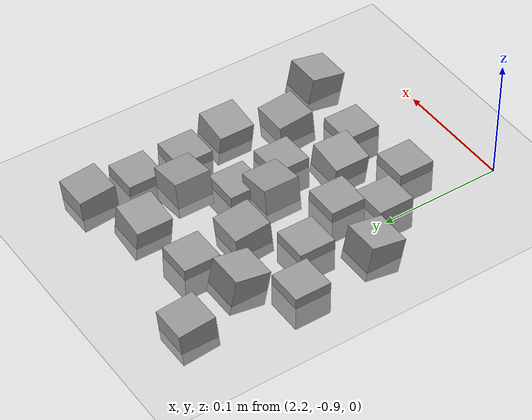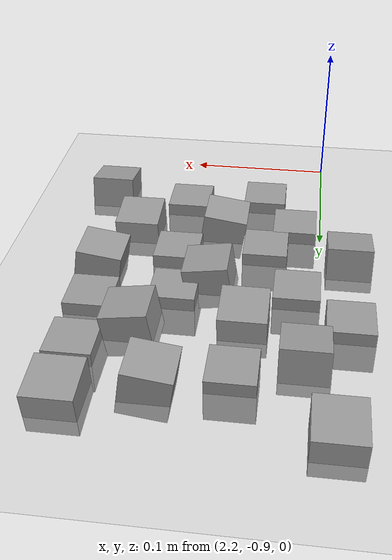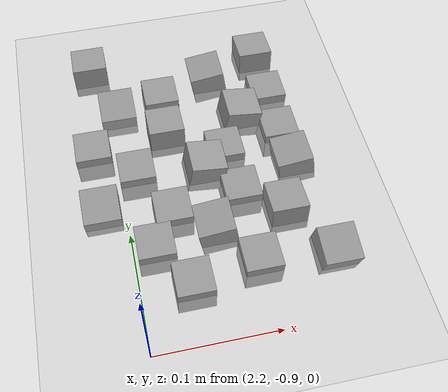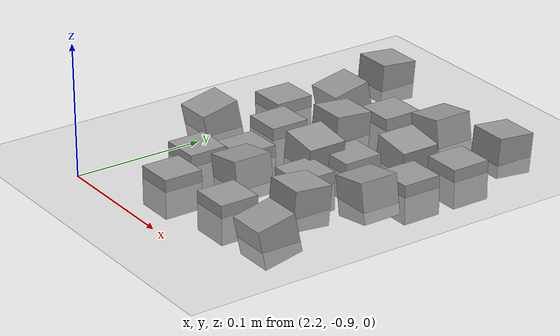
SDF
<sdf version="1.7">
 <world name="default">
  <model name="ground_plane">
   <static>1</static>
   <link name="link">
    <collision name="collision">
     <geometry><plane><normal>0 0 1</normal><size>100 100</size></plane></geometry>
     <surface><friction><ode><mu>100</mu><mu2>50</mu2></ode></friction></surface>
    </collision>
    <visual name="visual">
     <cast_shadows>0</cast_shadows>
     <geometry><plane><normal>0 0 1</normal><size>100 100</size></plane></geometry>
     <material>
      <script><uri>file://media/materials/scripts/gazebo.material</uri><name>Gazebo/Grey</name></script>
     </material>
    </visual>
   </link>
  </model>
  <model name="stone_road_6">
   <link name="link_0">
    <inertial>
     <mass>1</mass>
     <inertia>
      <ixx>0.166667</ixx>
      <ixy>0</ixy>
      <ixz>0</ixz>
      <iyy>0.166667</iyy>
      <iyz>0</iyz>
      <izz>0.166667</izz>
     </inertia>
    </inertial>
    <pose>-0.171827 0.03973 0.003778 0.2 -0 0</pose>
    <kinematic>1</kinematic>
    <visual name="visual">
     <geometry><box><size>0.03 0.03 0.03</size></box></geometry>
     <material>
      <lighting>1</lighting>
      <script><uri>file://media/materials/scripts/gazebo.material</uri><name>Gazebo/Grey</name></script>
      <shader type="pixel"><normal_map>__default__</normal_map></shader>
      <ambient>0.3 0.3 0.3 1</ambient>
      <diffuse>0.7 0.7 0.7 1</diffuse>
      <specular>0.01 0.01 0.01 1</specular>
      <emissive>0 0 0 1</emissive>
     </material>
    </visual>
    <collision name="collision">
     <geometry><box><size>0.03 0.03 0.03</size></box></geometry>
     <surface>
      <friction>
       <ode><mu>1</mu><mu2>1</mu2><fdir1>0 0 0</fdir1><slip1>0</slip1><slip2>0</slip2></ode>
       <torsional>
        <coefficient>1</coefficient>
        <patch_radius>0</patch_radius>
        <surface_radius>0</surface_radius>
        <use_patch_radius>1</use_patch_radius>
        <ode><slip>0</slip></ode>
       </torsional>
      </friction>
      <bounce><restitution_coefficient>0</restitution_coefficient><threshold>1e+06</threshold></bounce>
      <contact>
       <collide_without_contact>0</collide_without_contact>
       <collide_without_contact_bitmask>1</collide_without_contact_bitmask>
       <collide_bitmask>1</collide_bitmask>
       <ode>
        <soft_cfm>0</soft_cfm>
        <soft_erp>0.2</soft_erp>
        <kp>1e+13</kp>
        <kd>1</kd>
        <max_vel>0.01</max_vel>
        <min_depth>0</min_depth>
       </ode>
       <bullet>
        <split_impulse>1</split_impulse>
        <split_impulse_penetration_threshold>-0.01</split_impulse_penetration_threshold>
        <soft_cfm>0</soft_cfm>
        <soft_erp>0.2</soft_erp>
        <kp>1e+13</kp>
        <kd>1</kd>
       </bullet>
      </contact>
     </surface>
    </collision>
   </link>
   <link name="link_0_clone_1">
    <inertial>
     <mass>1</mass>
     <inertia>
      <ixx>0.166667</ixx>
      <ixy>0</ixy>
      <ixz>0</ixz>
      <iyy>0.166667</iyy>
      <iyz>0</iyz>
      <izz>0.166667</izz>
     </inertia>
    </inertial>
    <pose>-0.022921 -0.129606 0.003778 0.2 -0 0</pose>
    <kinematic>1</kinematic>
    <visual name="visual">
     <geometry><box><size>0.03 0.03 0.03</size></box></geometry>
     <material>
      <lighting>1</lighting>
      <script><uri>file://media/materials/scripts/gazebo.material</uri><name>Gazebo/Grey</name></script>
      <shader type="pixel"><normal_map>__default__</normal_map></shader>
      <ambient>0.3 0.3 0.3 1</ambient>
      <diffuse>0.7 0.7 0.7 1</diffuse>
      <specular>0.01 0.01 0.01 1</specular>
      <emissive>0 0 0 1</emissive>
     </material>
    </visual>
    <collision name="collision">
     <geometry><box><size>0.03 0.03 0.03</size></box></geometry>
     <surface>
      <friction>
       <ode><mu>1</mu><mu2>1</mu2><fdir1>0 0 0</fdir1><slip1>0</slip1><slip2>0</slip2></ode>
       <torsional>
        <coefficient>1</coefficient>
        <patch_radius>0</patch_radius>
        <surface_radius>0</surface_radius>
        <use_patch_radius>1</use_patch_radius>
        <ode><slip>0</slip></ode>
       </torsional>
      </friction>
      <bounce><restitution_coefficient>0</restitution_coefficient><threshold>1e+06</threshold></bounce>
      <contact>
       <collide_without_contact>0</collide_without_contact>
       <collide_without_contact_bitmask>1</collide_without_contact_bitmask>
       <collide_bitmask>1</collide_bitmask>
       <ode>
        <soft_cfm>0</soft_cfm>
        <soft_erp>0.2</soft_erp>
        <kp>1e+13</kp>
        <kd>1</kd>
        <max_vel>0.01</max_vel>
        <min_depth>0</min_depth>
       </ode>
       <bullet>
        <split_impulse>1</split_impulse>
        <split_impulse_penetration_threshold>-0.01</split_impulse_penetration_threshold>
        <soft_cfm>0</soft_cfm>
        <soft_erp>0.2</soft_erp>
        <kp>1e+13</kp>
        <kd>1</kd>
       </bullet>
      </contact>
     </surface>
    </collision>
   </link>
   <link name="link_0_clone_2">
    <inertial>
     <mass>1</mass>
     <inertia>
      <ixx>0.166667</ixx>
      <ixy>0</ixy>
      <ixz>0</ixz>
      <iyy>0.166667</iyy>
      <iyz>0</iyz>
      <izz>0.166667</izz>
     </inertia>
    </inertial>
    <pose>-0.065685 0.018139 0.003778 0 0.15 0</pose>
    <kinematic>1</kinematic>
    <visual name="visual">
     <geometry><box><size>0.03 0.03 0.03</size></box></geometry>
     <material>
      <lighting>1</lighting>
      <script><uri>file://media/materials/scripts/gazebo.material</uri><name>Gazebo/Grey</name></script>
      <shader type="pixel"><normal_map>__default__</normal_map></shader>
      <ambient>0.3 0.3 0.3 1</ambient>
      <diffuse>0.7 0.7 0.7 1</diffuse>
      <specular>0.01 0.01 0.01 1</specular>
      <emissive>0 0 0 1</emissive>
     </material>
    </visual>
    <collision name="collision">
     <geometry><box><size>0.03 0.03 0.03</size></box></geometry>
     <surface>
      <friction>
       <ode><mu>1</mu><mu2>1</mu2><fdir1>0 0 0</fdir1><slip1>0</slip1><slip2>0</slip2></ode>
       <torsional>
        <coefficient>1</coefficient>
        <patch_radius>0</patch_radius>
        <surface_radius>0</surface_radius>
        <use_patch_radius>1</use_patch_radius>
        <ode><slip>0</slip></ode>
       </torsional>
      </friction>
      <bounce><restitution_coefficient>0</restitution_coefficient><threshold>1e+06</threshold></bounce>
      <contact>
       <collide_without_contact>0</collide_without_contact>
       <collide_without_contact_bitmask>1</collide_without_contact_bitmask>
       <collide_bitmask>1</collide_bitmask>
       <ode>
        <soft_cfm>0</soft_cfm>
        <soft_erp>0.2</soft_erp>
        <kp>1e+13</kp>
        <kd>1</kd>
        <max_vel>0.01</max_vel>
        <min_depth>0</min_depth>
       </ode>
       <bullet>
        <split_impulse>1</split_impulse>
        <split_impulse_penetration_threshold>-0.01</split_impulse_penetration_threshold>
        <soft_cfm>0</soft_cfm>
        <soft_erp>0.2</soft_erp>
        <kp>1e+13</kp>
        <kd>1</kd>
       </bullet>
      </contact>
     </surface>
    </collision>
   </link>
   <link name="link_0_clone_2_clone">
    <inertial>
     <mass>1</mass>
     <inertia>
      <ixx>0.166667</ixx>
      <ixy>0</ixy>
      <ixz>0</ixz>
      <iyy>0.166667</iyy>
      <iyz>0</iyz>
      <izz>0.166667</izz>
     </inertia>
    </inertial>
    <pose>-0.10771 -0.03187 0.003778 0 0.15 0</pose>
    <kinematic>1</kinematic>
    <visual name="visual">
     <geometry><box><size>0.03 0.03 0.03</size></box></geometry>
     <material>
      <lighting>1</lighting>
      <script><uri>file://media/materials/scripts/gazebo.material</uri><name>Gazebo/Grey</name></script>
      <shader type="pixel"><normal_map>__default__</normal_map></shader>
      <ambient>0.3 0.3 0.3 1</ambient>
      <diffuse>0.7 0.7 0.7 1</diffuse>
      <specular>0.01 0.01 0.01 1</specular>
      <emissive>0 0 0 1</emissive>
     </material>
    </visual>
    <collision name="collision">
     <geometry><box><size>0.03 0.03 0.03</size></box></geometry>
     <surface>
      <friction>
       <ode><mu>1</mu><mu2>1</mu2><fdir1>0 0 0</fdir1><slip1>0</slip1><slip2>0</slip2></ode>
       <torsional>
        <coefficient>1</coefficient>
        <patch_radius>0</patch_radius>
        <surface_radius>0</surface_radius>
        <use_patch_radius>1</use_patch_radius>
        <ode><slip>0</slip></ode>
       </torsional>
      </friction>
      <bounce><restitution_coefficient>0</restitution_coefficient><threshold>1e+06</threshold></bounce>
      <contact>
       <collide_without_contact>0</collide_without_contact>
       <collide_without_contact_bitmask>1</collide_without_contact_bitmask>
       <collide_bitmask>1</collide_bitmask>
       <ode>
        <soft_cfm>0</soft_cfm>
        <soft_erp>0.2</soft_erp>
        <kp>1e+13</kp>
        <kd>1</kd>
        <max_vel>0.01</max_vel>
        <min_depth>0</min_depth>
       </ode>
       <bullet>
        <split_impulse>1</split_impulse>
        <split_impulse_penetration_threshold>-0.01</split_impulse_penetration_threshold>
        <soft_cfm>0</soft_cfm>
        <soft_erp>0.2</soft_erp>
        <kp>1e+13</kp>
        <kd>1</kd>
       </bullet>
      </contact>
     </surface>
    </collision>
   </link>
   <link name="link_0_clone_2_clone_2_clone_0">
    <inertial>
     <mass>1</mass>
     <inertia>
      <ixx>0.166667</ixx>
      <ixy>0</ixy>
      <ixz>0</ixz>
      <iyy>0.166667</iyy>
      <iyz>0</iyz>
      <izz>0.166667</izz>
     </inertia>
    </inertial>
    <pose>-0.032874 -0.039714 0.003778 0 -0.15 0</pose>
    <kinematic>1</kinematic>
    <visual name="visual">
     <geometry><box><size>0.03 0.03 0.03</size></box></geometry>
     <material>
      <lighting>1</lighting>
      <script><uri>file://media/materials/scripts/gazebo.material</uri><name>Gazebo/Grey</name></script>
      <shader type="pixel"><normal_map>__default__</normal_map></shader>
      <ambient>0.3 0.3 0.3 1</ambient>
      <diffuse>0.7 0.7 0.7 1</diffuse>
      <specular>0.01 0.01 0.01 1</specular>
      <emissive>0 0 0 1</emissive>
     </material>
    </visual>
    <collision name="collision">
     <geometry><box><size>0.03 0.03 0.03</size></box></geometry>
     <surface>
      <friction>
       <ode><mu>1</mu><mu2>1</mu2><fdir1>0 0 0</fdir1><slip1>0</slip1><slip2>0</slip2></ode>
       <torsional>
        <coefficient>1</coefficient>
        <patch_radius>0</patch_radius>
        <surface_radius>0</surface_radius>
        <use_patch_radius>1</use_patch_radius>
        <ode><slip>0</slip></ode>
       </torsional>
      </friction>
      <bounce><restitution_coefficient>0</restitution_coefficient><threshold>1e+06</threshold></bounce>
      <contact>
       <collide_without_contact>0</collide_without_contact>
       <collide_without_contact_bitmask>1</collide_without_contact_bitmask>
       <collide_bitmask>1</collide_bitmask>
       <ode>
        <soft_cfm>0</soft_cfm>
        <soft_erp>0.2</soft_erp>
        <kp>1e+13</kp>
        <kd>1</kd>
        <max_vel>0.01</max_vel>
        <min_depth>0</min_depth>
       </ode>
       <bullet>
        <split_impulse>1</split_impulse>
        <split_impulse_penetration_threshold>-0.01</split_impulse_penetration_threshold>
        <soft_cfm>0</soft_cfm>
        <soft_erp>0.2</soft_erp>
        <kp>1e+13</kp>
        <kd>1</kd>
       </bullet>
      </contact>
     </surface>
    </collision>
   </link>
   <link name="link_0_clone_2_clone_2_clone_1">
    <inertial>
     <mass>1</mass>
     <inertia>
      <ixx>0.166667</ixx>
      <ixy>0</ixy>
      <ixz>0</ixz>
      <iyy>0.166667</iyy>
      <iyz>0</iyz>
      <izz>0.166667</izz>
     </inertia>
    </inertial>
    <pose>-0.085624 0.065625 0.003778 0 -0.15 0</pose>
    <kinematic>1</kinematic>
    <visual name="visual">
     <geometry><box><size>0.03 0.03 0.03</size></box></geometry>
     <material>
      <lighting>1</lighting>
      <script><uri>file://media/materials/scripts/gazebo.material</uri><name>Gazebo/Grey</name></script>
      <shader type="pixel"><normal_map>__default__</normal_map></shader>
      <ambient>0.3 0.3 0.3 1</ambient>
      <diffuse>0.7 0.7 0.7 1</diffuse>
      <specular>0.01 0.01 0.01 1</specular>
      <emissive>0 0 0 1</emissive>
     </material>
    </visual>
    <collision name="collision">
     <geometry><box><size>0.03 0.03 0.03</size></box></geometry>
     <surface>
      <friction>
       <ode><mu>1</mu><mu2>1</mu2><fdir1>0 0 0</fdir1><slip1>0</slip1><slip2>0</slip2></ode>
       <torsional>
        <coefficient>1</coefficient>
        <patch_radius>0</patch_radius>
        <surface_radius>0</surface_radius>
        <use_patch_radius>1</use_patch_radius>
        <ode><slip>0</slip></ode>
       </torsional>
      </friction>
      <bounce><restitution_coefficient>0</restitution_coefficient><threshold>1e+06</threshold></bounce>
      <contact>
       <collide_without_contact>0</collide_without_contact>
       <collide_without_contact_bitmask>1</collide_without_contact_bitmask>
       <collide_bitmask>1</collide_bitmask>
       <ode>
        <soft_cfm>0</soft_cfm>
        <soft_erp>0.2</soft_erp>
        <kp>1e+13</kp>
        <kd>1</kd>
        <max_vel>0.01</max_vel>
        <min_depth>0</min_depth>
       </ode>
       <bullet>
        <split_impulse>1</split_impulse>
        <split_impulse_penetration_threshold>-0.01</split_impulse_penetration_threshold>
        <soft_cfm>0</soft_cfm>
        <soft_erp>0.2</soft_erp>
        <kp>1e+13</kp>
        <kd>1</kd>
       </bullet>
      </contact>
     </surface>
    </collision>
   </link>
   <link name="link_0_clone_2_clone_2_clone_13_clone_clone_14">
    <inertial>
     <mass>1</mass>
     <inertia>
      <ixx>0.166667</ixx>
      <ixy>0</ixy>
      <ixz>0</ixz>
      <iyy>0.166667</iyy>
      <iyz>0</iyz>
      <izz>0.166667</izz>
     </inertia>
    </inertial>
    <pose>-0.190578 0.093923 0.003778 -0.1 0 0</pose>
    <kinematic>1</kinematic>
    <visual name="visual">
     <geometry><box><size>0.03 0.03 0.03</size></box></geometry>
     <material>
      <lighting>1</lighting>
      <script><uri>file://media/materials/scripts/gazebo.material</uri><name>Gazebo/Grey</name></script>
      <shader type="pixel"><normal_map>__default__</normal_map></shader>
      <ambient>0.3 0.3 0.3 1</ambient>
      <diffuse>0.7 0.7 0.7 1</diffuse>
      <specular>0.01 0.01 0.01 1</specular>
      <emissive>0 0 0 1</emissive>
     </material>
    </visual>
    <collision name="collision">
     <geometry><box><size>0.03 0.03 0.03</size></box></geometry>
     <surface>
      <friction>
       <ode><mu>1</mu><mu2>1</mu2><fdir1>0 0 0</fdir1><slip1>0</slip1><slip2>0</slip2></ode>
       <torsional>
        <coefficient>1</coefficient>
        <patch_radius>0</patch_radius>
        <surface_radius>0</surface_radius>
        <use_patch_radius>1</use_patch_radius>
        <ode><slip>0</slip></ode>
       </torsional>
      </friction>
      <bounce><restitution_coefficient>0</restitution_coefficient><threshold>1e+06</threshold></bounce>
      <contact>
       <collide_without_contact>0</collide_without_contact>
       <collide_without_contact_bitmask>1</collide_without_contact_bitmask>
       <collide_bitmask>1</collide_bitmask>
       <ode>
        <soft_cfm>0</soft_cfm>
        <soft_erp>0.2</soft_erp>
        <kp>1e+13</kp>
        <kd>1</kd>
        <max_vel>0.01</max_vel>
        <min_depth>0</min_depth>
       </ode>
       <bullet>
        <split_impulse>1</split_impulse>
        <split_impulse_penetration_threshold>-0.01</split_impulse_penetration_threshold>
        <soft_cfm>0</soft_cfm>
        <soft_erp>0.2</soft_erp>
        <kp>1e+13</kp>
        <kd>1</kd>
       </bullet>
      </contact>
     </surface>
    </collision>
   </link>
   <link name="link_0_clone_2_clone_2_clone_13_clone_clone_16_clone_10">
    <inertial>
     <mass>1</mass>
     <inertia>
      <ixx>0.166667</ixx>
      <ixy>0</ixy>
      <ixz>0</ixz>
      <iyy>0.166667</iyy>
      <iyz>0</iyz>
      <izz>0.166667</izz>
     </inertia>
    </inertial>
    <pose>-0.082186 -0.05781 -0.006222 0 -0 0</pose>
    <kinematic>1</kinematic>
    <visual name="visual">
     <geometry><box><size>0.03 0.03 0.03</size></box></geometry>
     <material>
      <lighting>1</lighting>
      <script><uri>file://media/materials/scripts/gazebo.material</uri><name>Gazebo/Grey</name></script>
      <shader type="pixel"><normal_map>__default__</normal_map></shader>
      <ambient>0.3 0.3 0.3 1</ambient>
      <diffuse>0.7 0.7 0.7 1</diffuse>
      <specular>0.01 0.01 0.01 1</specular>
      <emissive>0 0 0 1</emissive>
     </material>
    </visual>
    <collision name="collision">
     <geometry><box><size>0.03 0.03 0.03</size></box></geometry>
     <surface>
      <friction>
       <ode><mu>1</mu><mu2>1</mu2><fdir1>0 0 0</fdir1><slip1>0</slip1><slip2>0</slip2></ode>
       <torsional>
        <coefficient>1</coefficient>
        <patch_radius>0</patch_radius>
        <surface_radius>0</surface_radius>
        <use_patch_radius>1</use_patch_radius>
        <ode><slip>0</slip></ode>
       </torsional>
      </friction>
      <bounce><restitution_coefficient>0</restitution_coefficient><threshold>1e+06</threshold></bounce>
      <contact>
       <collide_without_contact>0</collide_without_contact>
       <collide_without_contact_bitmask>1</collide_without_contact_bitmask>
       <collide_bitmask>1</collide_bitmask>
       <ode>
        <soft_cfm>0</soft_cfm>
        <soft_erp>0.2</soft_erp>
        <kp>1e+13</kp>
        <kd>1</kd>
        <max_vel>0.01</max_vel>
        <min_depth>0</min_depth>
       </ode>
       <bullet>
        <split_impulse>1</split_impulse>
        <split_impulse_penetration_threshold>-0.01</split_impulse_penetration_threshold>
        <soft_cfm>0</soft_cfm>
        <soft_erp>0.2</soft_erp>
        <kp>1e+13</kp>
        <kd>1</kd>
       </bullet>
      </contact>
     </surface>
    </collision>
   </link>
   <link name="link_0_clone_2_clone_2_clone_13_clone_clone_16_clone_11">
    <inertial>
     <mass>1</mass>
     <inertia>
      <ixx>0.166667</ixx>
      <ixy>0</ixy>
      <ixz>0</ixz>
      <iyy>0.166667</iyy>
      <iyz>0</iyz>
      <izz>0.166667</izz>
     </inertia>
    </inertial>
    <pose>-0.141844 -0.066911 -0.006222 0 -0 0</pose>
    <kinematic>1</kinematic>
    <visual name="visual">
     <geometry><box><size>0.03 0.03 0.03</size></box></geometry>
     <material>
      <lighting>1</lighting>
      <script><uri>file://media/materials/scripts/gazebo.material</uri><name>Gazebo/Grey</name></script>
      <shader type="pixel"><normal_map>__default__</normal_map></shader>
      <ambient>0.3 0.3 0.3 1</ambient>
      <diffuse>0.7 0.7 0.7 1</diffuse>
      <specular>0.01 0.01 0.01 1</specular>
      <emissive>0 0 0 1</emissive>
     </material>
    </visual>
    <collision name="collision">
     <geometry><box><size>0.03 0.03 0.03</size></box></geometry>
     <surface>
      <friction>
       <ode><mu>1</mu><mu2>1</mu2><fdir1>0 0 0</fdir1><slip1>0</slip1><slip2>0</slip2></ode>
       <torsional>
        <coefficient>1</coefficient>
        <patch_radius>0</patch_radius>
        <surface_radius>0</surface_radius>
        <use_patch_radius>1</use_patch_radius>
        <ode><slip>0</slip></ode>
       </torsional>
      </friction>
      <bounce><restitution_coefficient>0</restitution_coefficient><threshold>1e+06</threshold></bounce>
      <contact>
       <collide_without_contact>0</collide_without_contact>
       <collide_without_contact_bitmask>1</collide_without_contact_bitmask>
       <collide_bitmask>1</collide_bitmask>
       <ode>
        <soft_cfm>0</soft_cfm>
        <soft_erp>0.2</soft_erp>
        <kp>1e+13</kp>
        <kd>1</kd>
        <max_vel>0.01</max_vel>
        <min_depth>0</min_depth>
       </ode>
       <bullet>
        <split_impulse>1</split_impulse>
        <split_impulse_penetration_threshold>-0.01</split_impulse_penetration_threshold>
        <soft_cfm>0</soft_cfm>
        <soft_erp>0.2</soft_erp>
        <kp>1e+13</kp>
        <kd>1</kd>
       </bullet>
      </contact>
     </surface>
    </collision>
   </link>
   <link name="link_0_clone_2_clone_2_clone_13_clone_clone_16_clone_12">
    <inertial>
     <mass>1</mass>
     <inertia>
      <ixx>0.166667</ixx>
      <ixy>0</ixy>
      <ixz>0</ixz>
      <iyy>0.166667</iyy>
      <iyz>0</iyz>
      <izz>0.166667</izz>
     </inertia>
    </inertial>
    <pose>-0.164908 -0.022947 -0.006222 0 -0 0</pose>
    <kinematic>1</kinematic>
    <visual name="visual">
     <geometry><box><size>0.03 0.03 0.03</size></box></geometry>
     <material>
      <lighting>1</lighting>
      <script><uri>file://media/materials/scripts/gazebo.material</uri><name>Gazebo/Grey</name></script>
      <shader type="pixel"><normal_map>__default__</normal_map></shader>
      <ambient>0.3 0.3 0.3 1</ambient>
      <diffuse>0.7 0.7 0.7 1</diffuse>
      <specular>0.01 0.01 0.01 1</specular>
      <emissive>0 0 0 1</emissive>
     </material>
    </visual>
    <collision name="collision">
     <geometry><box><size>0.03 0.03 0.03</size></box></geometry>
     <surface>
      <friction>
       <ode><mu>1</mu><mu2>1</mu2><fdir1>0 0 0</fdir1><slip1>0</slip1><slip2>0</slip2></ode>
       <torsional>
        <coefficient>1</coefficient>
        <patch_radius>0</patch_radius>
        <surface_radius>0</surface_radius>
        <use_patch_radius>1</use_patch_radius>
        <ode><slip>0</slip></ode>
       </torsional>
      </friction>
      <bounce><restitution_coefficient>0</restitution_coefficient><threshold>1e+06</threshold></bounce>
      <contact>
       <collide_without_contact>0</collide_without_contact>
       <collide_without_contact_bitmask>1</collide_without_contact_bitmask>
       <collide_bitmask>1</collide_bitmask>
       <ode>
        <soft_cfm>0</soft_cfm>
        <soft_erp>0.2</soft_erp>
        <kp>1e+13</kp>
        <kd>1</kd>
        <max_vel>0.01</max_vel>
        <min_depth>0</min_depth>
       </ode>
       <bullet>
        <split_impulse>1</split_impulse>
        <split_impulse_penetration_threshold>-0.01</split_impulse_penetration_threshold>
        <soft_cfm>0</soft_cfm>
        <soft_erp>0.2</soft_erp>
        <kp>1e+13</kp>
        <kd>1</kd>
       </bullet>
      </contact>
     </surface>
    </collision>
   </link>
   <link name="link_0_clone_2_clone_2_clone_13_clone_clone_16_clone_2">
    <inertial>
     <mass>1</mass>
     <inertia>
      <ixx>0.166667</ixx>
      <ixy>0</ixy>
      <ixz>0</ixz>
      <iyy>0.166667</iyy>
      <iyz>0</iyz>
      <izz>0.166667</izz>
     </inertia>
    </inertial>
    <pose>-0.035128 0.040728 -0.006222 0 -0 0</pose>
    <kinematic>1</kinematic>
    <visual name="visual">
     <geometry><box><size>0.03 0.03 0.03</size></box></geometry>
     <material>
      <lighting>1</lighting>
      <script><uri>file://media/materials/scripts/gazebo.material</uri><name>Gazebo/Grey</name></script>
      <shader type="pixel"><normal_map>__default__</normal_map></shader>
      <ambient>0.3 0.3 0.3 1</ambient>
      <diffuse>0.7 0.7 0.7 1</diffuse>
      <specular>0.01 0.01 0.01 1</specular>
      <emissive>0 0 0 1</emissive>
     </material>
    </visual>
    <collision name="collision">
     <geometry><box><size>0.03 0.03 0.03</size></box></geometry>
     <surface>
      <friction>
       <ode><mu>1</mu><mu2>1</mu2><fdir1>0 0 0</fdir1><slip1>0</slip1><slip2>0</slip2></ode>
       <torsional>
        <coefficient>1</coefficient>
        <patch_radius>0</patch_radius>
        <surface_radius>0</surface_radius>
        <use_patch_radius>1</use_patch_radius>
        <ode><slip>0</slip></ode>
       </torsional>
      </friction>
      <bounce><restitution_coefficient>0</restitution_coefficient><threshold>1e+06</threshold></bounce>
      <contact>
       <collide_without_contact>0</collide_without_contact>
       <collide_without_contact_bitmask>1</collide_without_contact_bitmask>
       <collide_bitmask>1</collide_bitmask>
       <ode>
        <soft_cfm>0</soft_cfm>
        <soft_erp>0.2</soft_erp>
        <kp>1e+13</kp>
        <kd>1</kd>
        <max_vel>0.01</max_vel>
        <min_depth>0</min_depth>
       </ode>
       <bullet>
        <split_impulse>1</split_impulse>
        <split_impulse_penetration_threshold>-0.01</split_impulse_penetration_threshold>
        <soft_cfm>0</soft_cfm>
        <soft_erp>0.2</soft_erp>
        <kp>1e+13</kp>
        <kd>1</kd>
       </bullet>
      </contact>
     </surface>
    </collision>
   </link>
   <link name="link_0_clone_2_clone_2_clone_13_clone_clone_16_clone_26">
    <inertial>
     <mass>1</mass>
     <inertia>
      <ixx>0.166667</ixx>
      <ixy>0</ixy>
      <ixz>0</ixz>
      <iyy>0.166667</iyy>
      <iyz>0</iyz>
      <izz>0.166667</izz>
     </inertia>
    </inertial>
    <pose>-0.035162 -0.002247 -0.006222 0 -0 0</pose>
    <kinematic>1</kinematic>
    <visual name="visual">
     <geometry><box><size>0.03 0.03 0.03</size></box></geometry>
     <material>
      <lighting>1</lighting>
      <script><uri>file://media/materials/scripts/gazebo.material</uri><name>Gazebo/Grey</name></script>
      <shader type="pixel"><normal_map>__default__</normal_map></shader>
      <ambient>0.3 0.3 0.3 1</ambient>
      <diffuse>0.7 0.7 0.7 1</diffuse>
      <specular>0.01 0.01 0.01 1</specular>
      <emissive>0 0 0 1</emissive>
     </material>
    </visual>
    <collision name="collision">
     <geometry><box><size>0.03 0.03 0.03</size></box></geometry>
     <surface>
      <friction>
       <ode><mu>1</mu><mu2>1</mu2><fdir1>0 0 0</fdir1><slip1>0</slip1><slip2>0</slip2></ode>
       <torsional>
        <coefficient>1</coefficient>
        <patch_radius>0</patch_radius>
        <surface_radius>0</surface_radius>
        <use_patch_radius>1</use_patch_radius>
        <ode><slip>0</slip></ode>
       </torsional>
      </friction>
      <bounce><restitution_coefficient>0</restitution_coefficient><threshold>1e+06</threshold></bounce>
      <contact>
       <collide_without_contact>0</collide_without_contact>
       <collide_without_contact_bitmask>1</collide_without_contact_bitmask>
       <collide_bitmask>1</collide_bitmask>
       <ode>
        <soft_cfm>0</soft_cfm>
        <soft_erp>0.2</soft_erp>
        <kp>1e+13</kp>
        <kd>1</kd>
        <max_vel>0.01</max_vel>
        <min_depth>0</min_depth>
       </ode>
       <bullet>
        <split_impulse>1</split_impulse>
        <split_impulse_penetration_threshold>-0.01</split_impulse_penetration_threshold>
        <soft_cfm>0</soft_cfm>
        <soft_erp>0.2</soft_erp>
        <kp>1e+13</kp>
        <kd>1</kd>
       </bullet>
      </contact>
     </surface>
    </collision>
   </link>
   <link name="link_0_clone_2_clone_2_clone_13_clone_clone_16_clone_27">
    <inertial>
     <mass>1</mass>
     <inertia>
      <ixx>0.166667</ixx>
      <ixy>0</ixy>
      <ixz>0</ixz>
      <iyy>0.166667</iyy>
      <iyz>0</iyz>
      <izz>0.166667</izz>
     </inertia>
    </inertial>
    <pose>-0.137316 -0.132225 -0.006222 0 -0 0</pose>
    <kinematic>1</kinematic>
    <visual name="visual">
     <geometry><box><size>0.03 0.03 0.03</size></box></geometry>
     <material>
      <lighting>1</lighting>
      <script><uri>file://media/materials/scripts/gazebo.material</uri><name>Gazebo/Grey</name></script>
      <shader type="pixel"><normal_map>__default__</normal_map></shader>
      <ambient>0.3 0.3 0.3 1</ambient>
      <diffuse>0.7 0.7 0.7 1</diffuse>
      <specular>0.01 0.01 0.01 1</specular>
      <emissive>0 0 0 1</emissive>
     </material>
    </visual>
    <collision name="collision">
     <geometry><box><size>0.03 0.03 0.03</size></box></geometry>
     <surface>
      <friction>
       <ode><mu>1</mu><mu2>1</mu2><fdir1>0 0 0</fdir1><slip1>0</slip1><slip2>0</slip2></ode>
       <torsional>
        <coefficient>1</coefficient>
        <patch_radius>0</patch_radius>
        <surface_radius>0</surface_radius>
        <use_patch_radius>1</use_patch_radius>
        <ode><slip>0</slip></ode>
       </torsional>
      </friction>
      <bounce><restitution_coefficient>0</restitution_coefficient><threshold>1e+06</threshold></bounce>
      <contact>
       <collide_without_contact>0</collide_without_contact>
       <collide_without_contact_bitmask>1</collide_without_contact_bitmask>
       <collide_bitmask>1</collide_bitmask>
       <ode>
        <soft_cfm>0</soft_cfm>
        <soft_erp>0.2</soft_erp>
        <kp>1e+13</kp>
        <kd>1</kd>
        <max_vel>0.01</max_vel>
        <min_depth>0</min_depth>
       </ode>
       <bullet>
        <split_impulse>1</split_impulse>
        <split_impulse_penetration_threshold>-0.01</split_impulse_penetration_threshold>
        <soft_cfm>0</soft_cfm>
        <soft_erp>0.2</soft_erp>
        <kp>1e+13</kp>
        <kd>1</kd>
       </bullet>
      </contact>
     </surface>
    </collision>
   </link>
   <link name="link_0_clone_2_clone_2_clone_13_clone_clone_16_clone_30">
    <inertial>
     <mass>1</mass>
     <inertia>
      <ixx>0.166667</ixx>
      <ixy>0</ixy>
      <ixz>0</ixz>
      <iyy>0.166667</iyy>
      <iyz>0</iyz>
      <izz>0.166667</izz>
     </inertia>
    </inertial>
    <pose>-0.160879 -0.095951 -0.006222 0 -0 0</pose>
    <kinematic>1</kinematic>
    <visual name="visual">
     <geometry><box><size>0.03 0.03 0.03</size></box></geometry>
     <material>
      <lighting>1</lighting>
      <script><uri>file://media/materials/scripts/gazebo.material</uri><name>Gazebo/Grey</name></script>
      <shader type="pixel"><normal_map>__default__</normal_map></shader>
      <ambient>0.3 0.3 0.3 1</ambient>
      <diffuse>0.7 0.7 0.7 1</diffuse>
      <specular>0.01 0.01 0.01 1</specular>
      <emissive>0 0 0 1</emissive>
     </material>
    </visual>
    <collision name="collision">
     <geometry><box><size>0.03 0.03 0.03</size></box></geometry>
     <surface>
      <friction>
       <ode><mu>1</mu><mu2>1</mu2><fdir1>0 0 0</fdir1><slip1>0</slip1><slip2>0</slip2></ode>
       <torsional>
        <coefficient>1</coefficient>
        <patch_radius>0</patch_radius>
        <surface_radius>0</surface_radius>
        <use_patch_radius>1</use_patch_radius>
        <ode><slip>0</slip></ode>
       </torsional>
      </friction>
      <bounce><restitution_coefficient>0</restitution_coefficient><threshold>1e+06</threshold></bounce>
      <contact>
       <collide_without_contact>0</collide_without_contact>
       <collide_without_contact_bitmask>1</collide_without_contact_bitmask>
       <collide_bitmask>1</collide_bitmask>
       <ode>
        <soft_cfm>0</soft_cfm>
        <soft_erp>0.2</soft_erp>
        <kp>1e+13</kp>
        <kd>1</kd>
        <max_vel>0.01</max_vel>
        <min_depth>0</min_depth>
       </ode>
       <bullet>
        <split_impulse>1</split_impulse>
        <split_impulse_penetration_threshold>-0.01</split_impulse_penetration_threshold>
        <soft_cfm>0</soft_cfm>
        <soft_erp>0.2</soft_erp>
        <kp>1e+13</kp>
        <kd>1</kd>
       </bullet>
      </contact>
     </surface>
    </collision>
   </link>
   <link name="link_0_clone_2_clone_2_clone_13_clone_clone_16_clone_31">
    <inertial>
     <mass>1</mass>
     <inertia>
      <ixx>0.166667</ixx>
      <ixy>0</ixy>
      <ixz>0</ixz>
      <iyy>0.166667</iyy>
      <iyz>0</iyz>
      <izz>0.166667</izz>
     </inertia>
    </inertial>
    <pose>-0.198811 0.004584 -0.006222 0 -0 0</pose>
    <kinematic>1</kinematic>
    <visual name="visual">
     <geometry><box><size>0.03 0.03 0.03</size></box></geometry>
     <material>
      <lighting>1</lighting>
      <script><uri>file://media/materials/scripts/gazebo.material</uri><name>Gazebo/Grey</name></script>
      <shader type="pixel"><normal_map>__default__</normal_map></shader>
      <ambient>0.3 0.3 0.3 1</ambient>
      <diffuse>0.7 0.7 0.7 1</diffuse>
      <specular>0.01 0.01 0.01 1</specular>
      <emissive>0 0 0 1</emissive>
     </material>
    </visual>
    <collision name="collision">
     <geometry><box><size>0.03 0.03 0.03</size></box></geometry>
     <surface>
      <friction>
       <ode><mu>1</mu><mu2>1</mu2><fdir1>0 0 0</fdir1><slip1>0</slip1><slip2>0</slip2></ode>
       <torsional>
        <coefficient>1</coefficient>
        <patch_radius>0</patch_radius>
        <surface_radius>0</surface_radius>
        <use_patch_radius>1</use_patch_radius>
        <ode><slip>0</slip></ode>
       </torsional>
      </friction>
      <bounce><restitution_coefficient>0</restitution_coefficient><threshold>1e+06</threshold></bounce>
      <contact>
       <collide_without_contact>0</collide_without_contact>
       <collide_without_contact_bitmask>1</collide_without_contact_bitmask>
       <collide_bitmask>1</collide_bitmask>
       <ode>
        <soft_cfm>0</soft_cfm>
        <soft_erp>0.2</soft_erp>
        <kp>1e+13</kp>
        <kd>1</kd>
        <max_vel>0.01</max_vel>
        <min_depth>0</min_depth>
       </ode>
       <bullet>
        <split_impulse>1</split_impulse>
        <split_impulse_penetration_threshold>-0.01</split_impulse_penetration_threshold>
        <soft_cfm>0</soft_cfm>
        <soft_erp>0.2</soft_erp>
        <kp>1e+13</kp>
        <kd>1</kd>
       </bullet>
      </contact>
     </surface>
    </collision>
   </link>
   <link name="link_0_clone_2_clone_2_clone_13_clone_clone_16_clone_4">
    <inertial>
     <mass>1</mass>
     <inertia>
      <ixx>0.166667</ixx>
      <ixy>0</ixy>
      <ixz>0</ixz>
      <iyy>0.166667</iyy>
      <iyz>0</iyz>
      <izz>0.166667</izz>
     </inertia>
    </inertial>
    <pose>-0.131411 0.053677 -0.006222 0 -0 0</pose>
    <kinematic>1</kinematic>
    <visual name="visual">
     <geometry><box><size>0.03 0.03 0.03</size></box></geometry>
     <material>
      <lighting>1</lighting>
      <script><uri>file://media/materials/scripts/gazebo.material</uri><name>Gazebo/Grey</name></script>
      <shader type="pixel"><normal_map>__default__</normal_map></shader>
      <ambient>0.3 0.3 0.3 1</ambient>
      <diffuse>0.7 0.7 0.7 1</diffuse>
      <specular>0.01 0.01 0.01 1</specular>
      <emissive>0 0 0 1</emissive>
     </material>
    </visual>
    <collision name="collision">
     <geometry><box><size>0.03 0.03 0.03</size></box></geometry>
     <surface>
      <friction>
       <ode><mu>1</mu><mu2>1</mu2><fdir1>0 0 0</fdir1><slip1>0</slip1><slip2>0</slip2></ode>
       <torsional>
        <coefficient>1</coefficient>
        <patch_radius>0</patch_radius>
        <surface_radius>0</surface_radius>
        <use_patch_radius>1</use_patch_radius>
        <ode><slip>0</slip></ode>
       </torsional>
      </friction>
      <bounce><restitution_coefficient>0</restitution_coefficient><threshold>1e+06</threshold></bounce>
      <contact>
       <collide_without_contact>0</collide_without_contact>
       <collide_without_contact_bitmask>1</collide_without_contact_bitmask>
       <collide_bitmask>1</collide_bitmask>
       <ode>
        <soft_cfm>0</soft_cfm>
        <soft_erp>0.2</soft_erp>
        <kp>1e+13</kp>
        <kd>1</kd>
        <max_vel>0.01</max_vel>
        <min_depth>0</min_depth>
       </ode>
       <bullet>
        <split_impulse>1</split_impulse>
        <split_impulse_penetration_threshold>-0.01</split_impulse_penetration_threshold>
        <soft_cfm>0</soft_cfm>
        <soft_erp>0.2</soft_erp>
        <kp>1e+13</kp>
        <kd>1</kd>
       </bullet>
      </contact>
     </surface>
    </collision>
   </link>
   <link name="link_0_clone_2_clone_2_clone_13_clone_clone_16_clone_5">
    <inertial>
     <mass>1</mass>
     <inertia>
      <ixx>0.166667</ixx>
      <ixy>0</ixy>
      <ixz>0</ixz>
      <iyy>0.166667</iyy>
      <iyz>0</iyz>
      <izz>0.166667</izz>
     </inertia>
    </inertial>
    <pose>-0.086674 -0.014784 -0.006222 0 -0 0</pose>
    <kinematic>1</kinematic>
    <visual name="visual">
     <geometry><box><size>0.03 0.03 0.03</size></box></geometry>
     <material>
      <lighting>1</lighting>
      <script><uri>file://media/materials/scripts/gazebo.material</uri><name>Gazebo/Grey</name></script>
      <shader type="pixel"><normal_map>__default__</normal_map></shader>
      <ambient>0.3 0.3 0.3 1</ambient>
      <diffuse>0.7 0.7 0.7 1</diffuse>
      <specular>0.01 0.01 0.01 1</specular>
      <emissive>0 0 0 1</emissive>
     </material>
    </visual>
    <collision name="collision">
     <geometry><box><size>0.03 0.03 0.03</size></box></geometry>
     <surface>
      <friction>
       <ode><mu>1</mu><mu2>1</mu2><fdir1>0 0 0</fdir1><slip1>0</slip1><slip2>0</slip2></ode>
       <torsional>
        <coefficient>1</coefficient>
        <patch_radius>0</patch_radius>
        <surface_radius>0</surface_radius>
        <use_patch_radius>1</use_patch_radius>
        <ode><slip>0</slip></ode>
       </torsional>
      </friction>
      <bounce><restitution_coefficient>0</restitution_coefficient><threshold>1e+06</threshold></bounce>
      <contact>
       <collide_without_contact>0</collide_without_contact>
       <collide_without_contact_bitmask>1</collide_without_contact_bitmask>
       <collide_bitmask>1</collide_bitmask>
       <ode>
        <soft_cfm>0</soft_cfm>
        <soft_erp>0.2</soft_erp>
        <kp>1e+13</kp>
        <kd>1</kd>
        <max_vel>0.01</max_vel>
        <min_depth>0</min_depth>
       </ode>
       <bullet>
        <split_impulse>1</split_impulse>
        <split_impulse_penetration_threshold>-0.01</split_impulse_penetration_threshold>
        <soft_cfm>0</soft_cfm>
        <soft_erp>0.2</soft_erp>
        <kp>1e+13</kp>
        <kd>1</kd>
       </bullet>
      </contact>
     </surface>
    </collision>
   </link>
   <link name="link_0_clone_2_clone_2_clone_13_clone_clone_16_clone_9">
    <inertial>
     <mass>1</mass>
     <inertia>
      <ixx>0.166667</ixx>
      <ixy>0</ixy>
      <ixz>0</ixz>
      <iyy>0.166667</iyy>
      <iyz>0</iyz>
      <izz>0.166667</izz>
     </inertia>
    </inertial>
    <pose>-0.081689 -0.122641 -0.006222 0 -0 0</pose>
    <kinematic>1</kinematic>
    <visual name="visual">
     <geometry><box><size>0.03 0.03 0.03</size></box></geometry>
     <material>
      <lighting>1</lighting>
      <script><uri>file://media/materials/scripts/gazebo.material</uri><name>Gazebo/Grey</name></script>
      <shader type="pixel"><normal_map>__default__</normal_map></shader>
      <ambient>0.3 0.3 0.3 1</ambient>
      <diffuse>0.7 0.7 0.7 1</diffuse>
      <specular>0.01 0.01 0.01 1</specular>
      <emissive>0 0 0 1</emissive>
     </material>
    </visual>
    <collision name="collision">
     <geometry><box><size>0.03 0.03 0.03</size></box></geometry>
     <surface>
      <friction>
       <ode><mu>1</mu><mu2>1</mu2><fdir1>0 0 0</fdir1><slip1>0</slip1><slip2>0</slip2></ode>
       <torsional>
        <coefficient>1</coefficient>
        <patch_radius>0</patch_radius>
        <surface_radius>0</surface_radius>
        <use_patch_radius>1</use_patch_radius>
        <ode><slip>0</slip></ode>
       </torsional>
      </friction>
      <bounce><restitution_coefficient>0</restitution_coefficient><threshold>1e+06</threshold></bounce>
      <contact>
       <collide_without_contact>0</collide_without_contact>
       <collide_without_contact_bitmask>1</collide_without_contact_bitmask>
       <collide_bitmask>1</collide_bitmask>
       <ode>
        <soft_cfm>0</soft_cfm>
        <soft_erp>0.2</soft_erp>
        <kp>1e+13</kp>
        <kd>1</kd>
        <max_vel>0.01</max_vel>
        <min_depth>0</min_depth>
       </ode>
       <bullet>
        <split_impulse>1</split_impulse>
        <split_impulse_penetration_threshold>-0.01</split_impulse_penetration_threshold>
        <soft_cfm>0</soft_cfm>
        <soft_erp>0.2</soft_erp>
        <kp>1e+13</kp>
        <kd>1</kd>
       </bullet>
      </contact>
     </surface>
    </collision>
   </link>
   <link name="link_0_clone_2_clone_2_clone_13_clone_clone_2">
    <inertial>
     <mass>1</mass>
     <inertia>
      <ixx>0.166667</ixx>
      <ixy>0</ixy>
      <ixz>0</ixz>
      <iyy>0.166667</iyy>
      <iyz>0</iyz>
      <izz>0.166667</izz>
     </inertia>
    </inertial>
    <pose>-0.037997 0.082571 0.003778 -0.1 0 0</pose>
    <kinematic>1</kinematic>
    <visual name="visual">
     <geometry><box><size>0.03 0.03 0.03</size></box></geometry>
     <material>
      <lighting>1</lighting>
      <script><uri>file://media/materials/scripts/gazebo.material</uri><name>Gazebo/Grey</name></script>
      <shader type="pixel"><normal_map>__default__</normal_map></shader>
      <ambient>0.3 0.3 0.3 1</ambient>
      <diffuse>0.7 0.7 0.7 1</diffuse>
      <specular>0.01 0.01 0.01 1</specular>
      <emissive>0 0 0 1</emissive>
     </material>
    </visual>
    <collision name="collision">
     <geometry><box><size>0.03 0.03 0.03</size></box></geometry>
     <surface>
      <friction>
       <ode><mu>1</mu><mu2>1</mu2><fdir1>0 0 0</fdir1><slip1>0</slip1><slip2>0</slip2></ode>
       <torsional>
        <coefficient>1</coefficient>
        <patch_radius>0</patch_radius>
        <surface_radius>0</surface_radius>
        <use_patch_radius>1</use_patch_radius>
        <ode><slip>0</slip></ode>
       </torsional>
      </friction>
      <bounce><restitution_coefficient>0</restitution_coefficient><threshold>1e+06</threshold></bounce>
      <contact>
       <collide_without_contact>0</collide_without_contact>
       <collide_without_contact_bitmask>1</collide_without_contact_bitmask>
       <collide_bitmask>1</collide_bitmask>
       <ode>
        <soft_cfm>0</soft_cfm>
        <soft_erp>0.2</soft_erp>
        <kp>1e+13</kp>
        <kd>1</kd>
        <max_vel>0.01</max_vel>
        <min_depth>0</min_depth>
       </ode>
       <bullet>
        <split_impulse>1</split_impulse>
        <split_impulse_penetration_threshold>-0.01</split_impulse_penetration_threshold>
        <soft_cfm>0</soft_cfm>
        <soft_erp>0.2</soft_erp>
        <kp>1e+13</kp>
        <kd>1</kd>
       </bullet>
      </contact>
     </surface>
    </collision>
   </link>
   <link name="link_0_clone_2_clone_2_clone_13_clone_clone_7">
    <inertial>
     <mass>1</mass>
     <inertia>
      <ixx>0.166667</ixx>
      <ixy>0</ixy>
      <ixz>0</ixz>
      <iyy>0.166667</iyy>
      <iyz>0</iyz>
      <izz>0.166667</izz>
     </inertia>
    </inertial>
    <pose>-0.133876 0.010561 0.003778 -0.1 0 0</pose>
    <kinematic>1</kinematic>
    <visual name="visual">
     <geometry><box><size>0.03 0.03 0.03</size></box></geometry>
     <material>
      <lighting>1</lighting>
      <script><uri>file://media/materials/scripts/gazebo.material</uri><name>Gazebo/Grey</name></script>
      <shader type="pixel"><normal_map>__default__</normal_map></shader>
      <ambient>0.3 0.3 0.3 1</ambient>
      <diffuse>0.7 0.7 0.7 1</diffuse>
      <specular>0.01 0.01 0.01 1</specular>
      <emissive>0 0 0 1</emissive>
     </material>
    </visual>
    <collision name="collision">
     <geometry><box><size>0.03 0.03 0.03</size></box></geometry>
     <surface>
      <friction>
       <ode><mu>1</mu><mu2>1</mu2><fdir1>0 0 0</fdir1><slip1>0</slip1><slip2>0</slip2></ode>
       <torsional>
        <coefficient>1</coefficient>
        <patch_radius>0</patch_radius>
        <surface_radius>0</surface_radius>
        <use_patch_radius>1</use_patch_radius>
        <ode><slip>0</slip></ode>
       </torsional>
      </friction>
      <bounce><restitution_coefficient>0</restitution_coefficient><threshold>1e+06</threshold></bounce>
      <contact>
       <collide_without_contact>0</collide_without_contact>
       <collide_without_contact_bitmask>1</collide_without_contact_bitmask>
       <collide_bitmask>1</collide_bitmask>
       <ode>
        <soft_cfm>0</soft_cfm>
        <soft_erp>0.2</soft_erp>
        <kp>1e+13</kp>
        <kd>1</kd>
        <max_vel>0.01</max_vel>
        <min_depth>0</min_depth>
       </ode>
       <bullet>
        <split_impulse>1</split_impulse>
        <split_impulse_penetration_threshold>-0.01</split_impulse_penetration_threshold>
        <soft_cfm>0</soft_cfm>
        <soft_erp>0.2</soft_erp>
        <kp>1e+13</kp>
        <kd>1</kd>
       </bullet>
      </contact>
     </surface>
    </collision>
   </link>
   <link name="link_0_clone_2_clone_2_clone_13_clone_clone_8">
    <inertial>
     <mass>1</mass>
     <inertia>
      <ixx>0.166667</ixx>
      <ixy>0</ixy>
      <ixz>0</ixz>
      <iyy>0.166667</iyy>
      <iyz>0</iyz>
      <izz>0.166667</izz>
     </inertia>
    </inertial>
    <pose>-0.051207 -0.083778 0.003778 -0.1 0 0</pose>
    <kinematic>1</kinematic>
    <visual name="visual">
     <geometry><box><size>0.03 0.03 0.03</size></box></geometry>
     <material>
      <lighting>1</lighting>
      <script><uri>file://media/materials/scripts/gazebo.material</uri><name>Gazebo/Grey</name></script>
      <shader type="pixel"><normal_map>__default__</normal_map></shader>
      <ambient>0.3 0.3 0.3 1</ambient>
      <diffuse>0.7 0.7 0.7 1</diffuse>
      <specular>0.01 0.01 0.01 1</specular>
      <emissive>0 0 0 1</emissive>
     </material>
    </visual>
    <collision name="collision">
     <geometry><box><size>0.03 0.03 0.03</size></box></geometry>
     <surface>
      <friction>
       <ode><mu>1</mu><mu2>1</mu2><fdir1>0 0 0</fdir1><slip1>0</slip1><slip2>0</slip2></ode>
       <torsional>
        <coefficient>1</coefficient>
        <patch_radius>0</patch_radius>
        <surface_radius>0</surface_radius>
        <use_patch_radius>1</use_patch_radius>
        <ode><slip>0</slip></ode>
       </torsional>
      </friction>
      <bounce><restitution_coefficient>0</restitution_coefficient><threshold>1e+06</threshold></bounce>
      <contact>
       <collide_without_contact>0</collide_without_contact>
       <collide_without_contact_bitmask>1</collide_without_contact_bitmask>
       <collide_bitmask>1</collide_bitmask>
       <ode>
        <soft_cfm>0</soft_cfm>
        <soft_erp>0.2</soft_erp>
        <kp>1e+13</kp>
        <kd>1</kd>
        <max_vel>0.01</max_vel>
        <min_depth>0</min_depth>
       </ode>
       <bullet>
        <split_impulse>1</split_impulse>
        <split_impulse_penetration_threshold>-0.01</split_impulse_penetration_threshold>
        <soft_cfm>0</soft_cfm>
        <soft_erp>0.2</soft_erp>
        <kp>1e+13</kp>
        <kd>1</kd>
       </bullet>
      </contact>
     </surface>
    </collision>
   </link>
   <link name="link_0_clone_2_clone_2_clone_3">
    <inertial>
     <mass>1</mass>
     <inertia>
      <ixx>0.166667</ixx>
      <ixy>0</ixy>
      <ixz>0</ixz>
      <iyy>0.166667</iyy>
      <iyz>0</iyz>
      <izz>0.166667</izz>
     </inertia>
    </inertial>
    <pose>-0.110514 -0.090915 0.003778 0 -0.15 0</pose>
    <kinematic>1</kinematic>
    <visual name="visual">
     <geometry><box><size>0.03 0.03 0.03</size></box></geometry>
     <material>
      <lighting>1</lighting>
      <script><uri>file://media/materials/scripts/gazebo.material</uri><name>Gazebo/Grey</name></script>
      <shader type="pixel"><normal_map>__default__</normal_map></shader>
      <ambient>0.3 0.3 0.3 1</ambient>
      <diffuse>0.7 0.7 0.7 1</diffuse>
      <specular>0.01 0.01 0.01 1</specular>
      <emissive>0 0 0 1</emissive>
     </material>
    </visual>
    <collision name="collision">
     <geometry><box><size>0.03 0.03 0.03</size></box></geometry>
     <surface>
      <friction>
       <ode><mu>1</mu><mu2>1</mu2><fdir1>0 0 0</fdir1><slip1>0</slip1><slip2>0</slip2></ode>
       <torsional>
        <coefficient>1</coefficient>
        <patch_radius>0</patch_radius>
        <surface_radius>0</surface_radius>
        <use_patch_radius>1</use_patch_radius>
        <ode><slip>0</slip></ode>
       </torsional>
      </friction>
      <bounce><restitution_coefficient>0</restitution_coefficient><threshold>1e+06</threshold></bounce>
      <contact>
       <collide_without_contact>0</collide_without_contact>
       <collide_without_contact_bitmask>1</collide_without_contact_bitmask>
       <collide_bitmask>1</collide_bitmask>
       <ode>
        <soft_cfm>0</soft_cfm>
        <soft_erp>0.2</soft_erp>
        <kp>1e+13</kp>
        <kd>1</kd>
        <max_vel>0.01</max_vel>
        <min_depth>0</min_depth>
       </ode>
       <bullet>
        <split_impulse>1</split_impulse>
        <split_impulse_penetration_threshold>-0.01</split_impulse_penetration_threshold>
        <soft_cfm>0</soft_cfm>
        <soft_erp>0.2</soft_erp>
        <kp>1e+13</kp>
        <kd>1</kd>
       </bullet>
      </contact>
     </surface>
    </collision>
   </link>
   <link name="link_0_clone_6">
    <inertial>
     <mass>1</mass>
     <inertia>
      <ixx>0.166667</ixx>
      <ixy>0</ixy>
      <ixz>0</ixz>
      <iyy>0.166667</iyy>
      <iyz>0</iyz>
      <izz>0.166667</izz>
     </inertia>
    </inertial>
    <pose>-0.198423 -0.058498 0.003778 0.2 -0 0</pose>
    <kinematic>1</kinematic>
    <visual name="visual">
     <geometry><box><size>0.03 0.03 0.03</size></box></geometry>
     <material>
      <lighting>1</lighting>
      <script><uri>file://media/materials/scripts/gazebo.material</uri><name>Gazebo/Grey</name></script>
      <shader type="pixel"><normal_map>__default__</normal_map></shader>
      <ambient>0.3 0.3 0.3 1</ambient>
      <diffuse>0.7 0.7 0.7 1</diffuse>
      <specular>0.01 0.01 0.01 1</specular>
      <emissive>0 0 0 1</emissive>
     </material>
    </visual>
    <collision name="collision">
     <geometry><box><size>0.03 0.03 0.03</size></box></geometry>
     <surface>
      <friction>
       <ode><mu>1</mu><mu2>1</mu2><fdir1>0 0 0</fdir1><slip1>0</slip1><slip2>0</slip2></ode>
       <torsional>
        <coefficient>1</coefficient>
        <patch_radius>0</patch_radius>
        <surface_radius>0</surface_radius>
        <use_patch_radius>1</use_patch_radius>
        <ode><slip>0</slip></ode>
       </torsional>
      </friction>
      <bounce><restitution_coefficient>0</restitution_coefficient><threshold>1e+06</threshold></bounce>
      <contact>
       <collide_without_contact>0</collide_without_contact>
       <collide_without_contact_bitmask>1</collide_without_contact_bitmask>
       <collide_bitmask>1</collide_bitmask>
       <ode>
        <soft_cfm>0</soft_cfm>
        <soft_erp>0.2</soft_erp>
        <kp>1e+13</kp>
        <kd>1</kd>
        <max_vel>0.01</max_vel>
        <min_depth>0</min_depth>
       </ode>
       <bullet>
        <split_impulse>1</split_impulse>
        <split_impulse_penetration_threshold>-0.01</split_impulse_penetration_threshold>
        <soft_cfm>0</soft_cfm>
        <soft_erp>0.2</soft_erp>
        <kp>1e+13</kp>
        <kd>1</kd>
       </bullet>
      </contact>
     </surface>
    </collision>
   </link>
   <static>0</static>
   <pose>2.379 -0.715905 -0 0 -0 0</pose>
  </model>
 </world>
</sdf>
